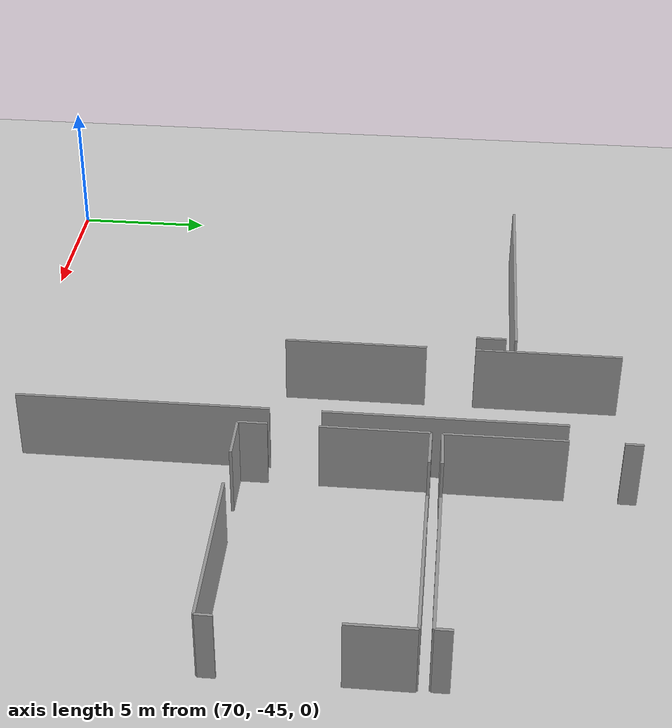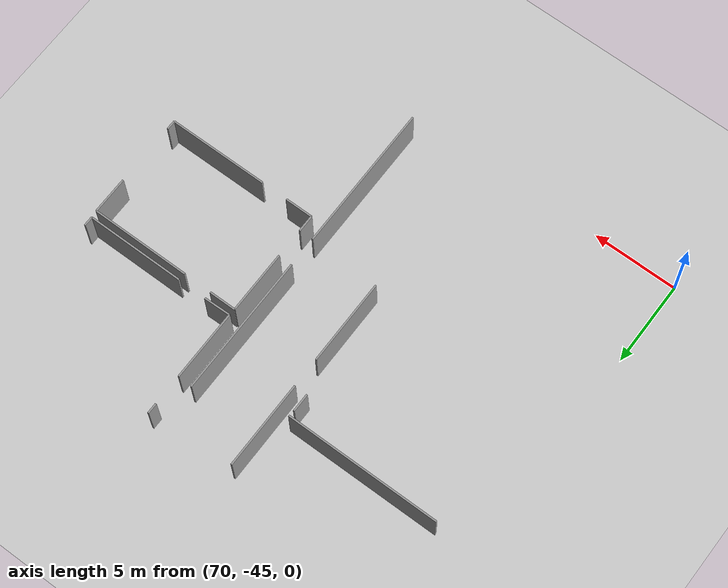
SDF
<sdf version="1.6">
 <world name="default">
  <model name="ground_plane">
   <static>1</static>
   <link name="link">
    <collision name="collision">
     <geometry><plane><normal>0 0 1</normal><size>100 100</size></plane></geometry>
     <surface><friction><ode><mu>100</mu><mu2>50</mu2></ode></friction></surface>
    </collision>
    <visual name="visual">
     <cast_shadows>0</cast_shadows>
     <geometry><plane><normal>0 0 1</normal><size>100 100</size></plane></geometry>
     <material>
      <script><uri>file://media/materials/scripts/gazebo.material</uri><name>Gazebo/Grey</name></script>
     </material>
    </visual>
   </link>
  </model>
  <model name="0510035741_A_40_1_104">
   <static>1</static>
   <link name="Wall_454">
    <collision name="Wall_454_Collision">
     <geometry><box><size>5.02917812308 0.1 2.5</size></box></geometry>
     <pose>2.51458906154 0 1.25 0 0 0</pose>
    </collision>
    <visual name="Wall_454_Visual">
     <pose>2.51458906154 0 1.25 0 0 0</pose>
     <geometry><box><size>5.02917812308 0.1 2.5</size></box></geometry>
     <material>
      <script><uri>file://media/materials/scripts/gazebo.material</uri><name>Gazebo/Grey</name></script>
      <ambient>1 1 1 1</ambient>
     </material>
    </visual>
    <pose>175.975514507 -84.663673713 0 0 0 1.57079632679</pose>
   </link>
   <link name="Wall_455">
    <collision name="Wall_455_Collision">
     <geometry><box><size>5.13941364355 0.1 2.5</size></box></geometry>
     <pose>2.56970682178 0 1.25 0 0 0</pose>
    </collision>
    <visual name="Wall_455_Visual">
     <pose>2.56970682178 0 1.25 0 0 0</pose>
     <geometry><box><size>5.13941364355 0.1 2.5</size></box></geometry>
     <material>
      <script><uri>file://media/materials/scripts/gazebo.material</uri><name>Gazebo/Grey</name></script>
      <ambient>1 1 1 1</ambient>
     </material>
    </visual>
    <pose>175.975514507 -77.9085730977 0 0 0 1.57079632679</pose>
   </link>
   <link name="Wall_466">
    <collision name="Wall_466_Collision">
     <geometry><box><size>8.23642217156 0.1 2.5</size></box></geometry>
     <pose>4.11821108578 0 1.25 0 0 0</pose>
    </collision>
    <visual name="Wall_466_Visual">
     <pose>4.11821108578 0 1.25 0 0 0</pose>
     <geometry><box><size>8.23642217156 0.1 2.5</size></box></geometry>
     <material>
      <script><uri>file://media/materials/scripts/gazebo.material</uri><name>Gazebo/Grey</name></script>
      <ambient>1 1 1 1</ambient>
     </material>
    </visual>
    <pose>180.115696497 -74.7508588338 0 0 0 -1.57079632679</pose>
   </link>
   <link name="Wall_467">
    <collision name="Wall_467_Collision">
     <geometry><box><size>8.69006419822 0.1 2.5</size></box></geometry>
     <pose>4.34503209911 0 1.25 0 0 0</pose>
    </collision>
    <visual name="Wall_467_Visual">
     <pose>4.34503209911 0 1.25 0 0 0</pose>
     <geometry><box><size>8.69006419822 0.1 2.5</size></box></geometry>
     <material>
      <script><uri>file://media/materials/scripts/gazebo.material</uri><name>Gazebo/Grey</name></script>
      <ambient>1 1 1 1</ambient>
     </material>
    </visual>
    <pose>180.115696497 -84.7378413904 0 0 0 -1.57079632679</pose>
   </link>
   <link name="Wall_508">
    <collision name="Wall_508_Collision">
     <geometry><box><size>9.12188908618 0.1 2.5</size></box></geometry>
     <pose>4.56094454309 0 1.25 0 0 0</pose>
    </collision>
    <visual name="Wall_508_Visual">
     <pose>4.56094454309 0 1.25 0 0 0</pose>
     <geometry><box><size>9.12188908618 0.1 2.5</size></box></geometry>
     <material>
      <script><uri>file://media/materials/scripts/gazebo.material</uri><name>Gazebo/Grey</name></script>
      <ambient>1 1 1 1</ambient>
     </material>
    </visual>
    <pose>175.261015615 -76.4859252862 0 0 0 -3.13917013724</pose>
   </link>
   <link name="Wall_512">
    <collision name="Wall_512_Collision">
     <geometry><box><size>1.0688273506 0.1 2.5</size></box></geometry>
     <pose>0.5344136753 0 1.25 0 0 0</pose>
    </collision>
    <visual name="Wall_512_Visual">
     <pose>0.5344136753 0 1.25 0 0 0</pose>
     <geometry><box><size>1.0688273506 0.1 2.5</size></box></geometry>
     <material>
      <script><uri>file://media/materials/scripts/gazebo.material</uri><name>Gazebo/Grey</name></script>
      <ambient>1 1 1 1</ambient>
     </material>
    </visual>
    <pose>175.204881859 -76.8224738222 0 0 0 -1.57079632679</pose>
   </link>
   <link name="Wall_543">
    <collision name="Wall_543_Collision">
     <geometry><box><size>0.998723655552 0.1 2.5</size></box></geometry>
     <pose>0.499361827776 0 1.25 0 0 0</pose>
    </collision>
    <visual name="Wall_543_Visual">
     <pose>0.499361827776 0 1.25 0 0 0</pose>
     <geometry><box><size>0.998723655552 0.1 2.5</size></box></geometry>
     <material>
      <script><uri>file://media/materials/scripts/gazebo.material</uri><name>Gazebo/Grey</name></script>
      <ambient>1 1 1 1</ambient>
     </material>
    </visual>
    <pose>180.931540948 -85.7172611299 0 0 0 1.57079632679</pose>
   </link>
   <link name="Wall_544">
    <collision name="Wall_544_Collision">
     <geometry><box><size>3.69847791162 0.1 2.5</size></box></geometry>
     <pose>1.84923895581 0 1.25 0 0 0</pose>
    </collision>
    <visual name="Wall_544_Visual">
     <pose>1.84923895581 0 1.25 0 0 0</pose>
     <geometry><box><size>3.69847791162 0.1 2.5</size></box></geometry>
     <material>
      <script><uri>file://media/materials/scripts/gazebo.material</uri><name>Gazebo/Grey</name></script>
      <ambient>1 1 1 1</ambient>
     </material>
    </visual>
    <pose>180.931540948 -83.0009969457 0 0 0 1.57079632679</pose>
   </link>
   <link name="Wall_545">
    <collision name="Wall_545_Collision">
     <geometry><box><size>1.57479314965 0.1 2.5</size></box></geometry>
     <pose>0.787396574825 0 1.25 0 0 0</pose>
    </collision>
    <visual name="Wall_545_Visual">
     <pose>0.787396574825 0 1.25 0 0 0</pose>
     <geometry><box><size>1.57479314965 0.1 2.5</size></box></geometry>
     <material>
      <script><uri>file://media/materials/scripts/gazebo.material</uri><name>Gazebo/Grey</name></script>
      <ambient>1 1 1 1</ambient>
     </material>
    </visual>
    <pose>180.931540948 -79.302519034 0 0 0 0.0</pose>
   </link>
   <link name="Wall_546">
    <collision name="Wall_546_Collision">
     <geometry><box><size>5.87524844267 0.1 2.5</size></box></geometry>
     <pose>2.93762422133 0 1.25 0 0 0</pose>
    </collision>
    <visual name="Wall_546_Visual">
     <pose>2.93762422133 0 1.25 0 0 0</pose>
     <geometry><box><size>5.87524844267 0.1 2.5</size></box></geometry>
     <material>
      <script><uri>file://media/materials/scripts/gazebo.material</uri><name>Gazebo/Grey</name></script>
      <ambient>1 1 1 1</ambient>
     </material>
    </visual>
    <pose>184.161898896 -79.302519034 0 0 0 0.0</pose>
   </link>
   <link name="Wall_547">
    <collision name="Wall_547_Collision">
     <geometry><box><size>2.17524653768 0.1 2.5</size></box></geometry>
     <pose>1.08762326884 0 1.25 0 0 0</pose>
    </collision>
    <visual name="Wall_547_Visual">
     <pose>1.08762326884 0 1.25 0 0 0</pose>
     <geometry><box><size>2.17524653768 0.1 2.5</size></box></geometry>
     <material>
      <script><uri>file://media/materials/scripts/gazebo.material</uri><name>Gazebo/Grey</name></script>
      <ambient>1 1 1 1</ambient>
     </material>
    </visual>
    <pose>190.037147338 -79.302519034 0 0 0 -1.57079632679</pose>
   </link>
   <link name="Wall_548">
    <collision name="Wall_548_Collision">
     <geometry><box><size>0.552193597958 0.1 2.5</size></box></geometry>
     <pose>0.276096798979 0 1.25 0 0 0</pose>
    </collision>
    <visual name="Wall_548_Visual">
     <pose>0.276096798979 0 1.25 0 0 0</pose>
     <geometry><box><size>0.552193597958 0.1 2.5</size></box></geometry>
     <material>
      <script><uri>file://media/materials/scripts/gazebo.material</uri><name>Gazebo/Grey</name></script>
      <ambient>1 1 1 1</ambient>
     </material>
    </visual>
    <pose>190.037147338 -85.1660835275 0 0 0 -1.57079632679</pose>
   </link>
   <link name="Wall_549">
    <collision name="Wall_549_Collision">
     <geometry><box><size>5.89226636864 0.1 2.5</size></box></geometry>
     <pose>2.94613318432 0 1.25 0 0 0</pose>
    </collision>
    <visual name="Wall_549_Visual">
     <pose>2.94613318432 0 1.25 0 0 0</pose>
     <geometry><box><size>5.89226636864 0.1 2.5</size></box></geometry>
     <material>
      <script><uri>file://media/materials/scripts/gazebo.material</uri><name>Gazebo/Grey</name></script>
      <ambient>1 1 1 1</ambient>
     </material>
    </visual>
    <pose>190.037147338 -85.7182771255 0 0 0 3.14159265359</pose>
   </link>
   <link name="Wall_550">
    <collision name="Wall_550_Collision">
     <geometry><box><size>1.63981718154 0.1 2.5</size></box></geometry>
     <pose>0.819908590771 0 1.25 0 0 0</pose>
    </collision>
    <visual name="Wall_550_Visual">
     <pose>0.819908590771 0 1.25 0 0 0</pose>
     <geometry><box><size>1.63981718154 0.1 2.5</size></box></geometry>
     <material>
      <script><uri>file://media/materials/scripts/gazebo.material</uri><name>Gazebo/Grey</name></script>
      <ambient>1 1 1 1</ambient>
     </material>
    </visual>
    <pose>182.571357815 -85.7182771255 0 0 0 3.14097307498</pose>
   </link>
   <link name="Wall_551">
    <collision name="Wall_551_Collision">
     <geometry><box><size>4.12926003772 0.1 2.5</size></box></geometry>
     <pose>2.06463001886 0 1.25 0 0 0</pose>
    </collision>
    <visual name="Wall_551_Visual">
     <pose>2.06463001886 0 1.25 0 0 0</pose>
     <geometry><box><size>4.12926003772 0.1 2.5</size></box></geometry>
     <material>
      <script><uri>file://media/materials/scripts/gazebo.material</uri><name>Gazebo/Grey</name></script>
      <ambient>1 1 1 1</ambient>
     </material>
    </visual>
    <pose>180.950844864 -78.9184727046 0 0 0 1.57079632679</pose>
   </link>
   <link name="Wall_552">
    <collision name="Wall_552_Collision">
     <geometry><box><size>0.61848730958 0.1 2.5</size></box></geometry>
     <pose>0.30924365479 0 1.25 0 0 0</pose>
    </collision>
    <visual name="Wall_552_Visual">
     <pose>0.30924365479 0 1.25 0 0 0</pose>
     <geometry><box><size>0.61848730958 0.1 2.5</size></box></geometry>
     <material>
      <script><uri>file://media/materials/scripts/gazebo.material</uri><name>Gazebo/Grey</name></script>
      <ambient>1 1 1 1</ambient>
     </material>
    </visual>
    <pose>180.950844864 -72.9962344664 0 0 0 1.57079632679</pose>
   </link>
   <link name="Wall_555">
    <collision name="Wall_555_Collision">
     <geometry><box><size>0.557019576965 0.1 2.5</size></box></geometry>
     <pose>0.278509788482 0 1.25 0 0 0</pose>
    </collision>
    <visual name="Wall_555_Visual">
     <pose>0.278509788482 0 1.25 0 0 0</pose>
     <geometry><box><size>0.557019576965 0.1 2.5</size></box></geometry>
     <material>
      <script><uri>file://media/materials/scripts/gazebo.material</uri><name>Gazebo/Grey</name></script>
      <ambient>1 1 1 1</ambient>
     </material>
    </visual>
    <pose>189.992951531 -78.3230992945 0 0 0 -1.57079632679</pose>
   </link>
   <link name="Wall_556">
    <collision name="Wall_556_Collision">
     <geometry><box><size>5.7805068548 0.1 2.5</size></box></geometry>
     <pose>2.8902534274 0 1.25 0 0 0</pose>
    </collision>
    <visual name="Wall_556_Visual">
     <pose>2.8902534274 0 1.25 0 0 0</pose>
     <geometry><box><size>5.7805068548 0.1 2.5</size></box></geometry>
     <material>
      <script><uri>file://media/materials/scripts/gazebo.material</uri><name>Gazebo/Grey</name></script>
      <ambient>1 1 1 1</ambient>
     </material>
    </visual>
    <pose>189.992951531 -78.8801188715 0 0 0 3.14159265359</pose>
   </link>
   <link name="Wall_557">
    <collision name="Wall_557_Collision">
     <geometry><box><size>1.57805329216 0.1 2.5</size></box></geometry>
     <pose>0.789026646082 0 1.25 0 0 0</pose>
    </collision>
    <visual name="Wall_557_Visual">
     <pose>0.789026646082 0 1.25 0 0 0</pose>
     <geometry><box><size>1.57805329216 0.1 2.5</size></box></geometry>
     <material>
      <script><uri>file://media/materials/scripts/gazebo.material</uri><name>Gazebo/Grey</name></script>
      <ambient>1 1 1 1</ambient>
     </material>
    </visual>
    <pose>182.528432001 -78.8801188715 0 0 0 -3.11728573674</pose>
   </link>
   <pose>-93.95 49.6727497285 0 0 0 0</pose>
  </model>
 </world>
</sdf>
